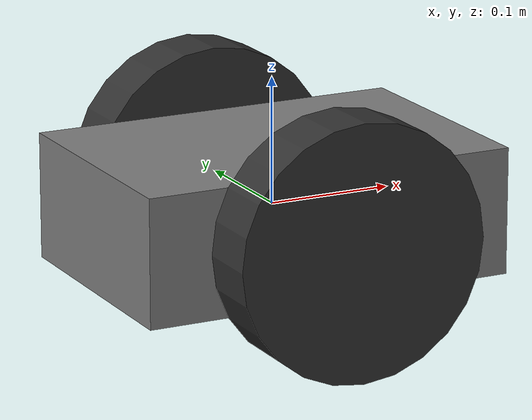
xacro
<?xml version="1.0"?>
<robot name="minimal_wheeled_robot" xmlns:xacro="http://www.ros.org/wiki/xacro">

  <xacro:include filename="$(find minimal_robot_description)/urdf/minimal_wheeled_robot.gazebo.xacro" />

  <xacro:property name="body_length" value="0.3"/>
  <xacro:property name="body_width" value="0.2"/>
  <xacro:property name="body_height" value="0.1"/>
  <xacro:property name="wheel_radius" value="0.1"/>
  <xacro:property name="wheel_width" value="0.05"/>
  <xacro:property name="wheel_separation" value="0.2"/>
  <xacro:property name="PI" value="3.1415"/>

  <material name="gray">
    <color rgba="0.5 0.5 0.5 1.0"/>
  </material>
  <material name="black">
    <color rgba="0.2 0.2 0.2 1.0"/>
  </material>

  <link name="base_link">
    <visual>
      <geometry>
        <box size="${body_length} ${body_width} ${body_height}"/>
      </geometry>
      <material name="gray"/>
    </visual>
    <collision>
      <geometry>
        <box size="${body_length} ${body_width} ${body_height}"/>
      </geometry>
    </collision>
    <inertial>
      <mass value="1.0"/>
      <origin xyz="0 0 0"/>
      <inertia ixx="1e-3" ixy="0" ixz="0" iyy="1e-3" iyz="0" izz="1e-3"/>
    </inertial>
  </link>

  <link name="base_footprint"/>
  <joint name="base_joint" type="fixed">
    <origin xyz="0 0 0" rpy="0 0 0"/>
    <parent link="base_footprint"/>
    <child link="base_link"/>
  </joint>

  <link name="left_wheel">
    <visual>
      <geometry>
        <cylinder radius="${wheel_radius}" length="${wheel_width}"/>
      </geometry>
      <material name="black"/>
    </visual>
    <collision>
      <geometry>
        <cylinder radius="${wheel_radius}" length="${wheel_width}"/>
      </geometry>
    </collision>
    <inertial>
      <mass value="0.5"/>
      <origin xyz="0 0 0"/>
      <inertia ixx="1e-3" ixy="0" ixz="0" iyy="1e-3" iyz="0" izz="1e-3"/>
    </inertial>
  </link>

  <link name="right_wheel">
    <visual>
      <geometry>
        <cylinder radius="${wheel_radius}" length="${wheel_width}"/>
      </geometry>
      <material name="black"/>
    </visual>
    <collision>
      <geometry>
        <cylinder radius="${wheel_radius}" length="${wheel_width}"/>
      </geometry>
    </collision>
    <inertial>
      <mass value="0.5"/>
      <origin xyz="0 0 0"/>
      <inertia ixx="1e-3" ixy="0" ixz="0" iyy="1e-3" iyz="0" izz="1e-3"/>
    </inertial>
  </link>

  <joint name="left_wheel_joint" type="continuous">
    <parent link="base_link"/>
    <child link="left_wheel"/>
    <origin xyz="0 ${wheel_separation/2 + wheel_width/2} 0" rpy="${-PI/2} 0 0"/>
    <axis xyz="0 0 1"/>
  </joint>

  <joint name="right_wheel_joint" type="continuous">
    <parent link="base_link"/>
    <child link="right_wheel"/>
    <origin xyz="0 ${-wheel_separation/2 - wheel_width/2} 0" rpy="${PI/2} 0 0"/>
    <axis xyz="0 0 -1"/>
  </joint>

  <xacro:minimal_wheeled_robot_gazebo />

</robot>
